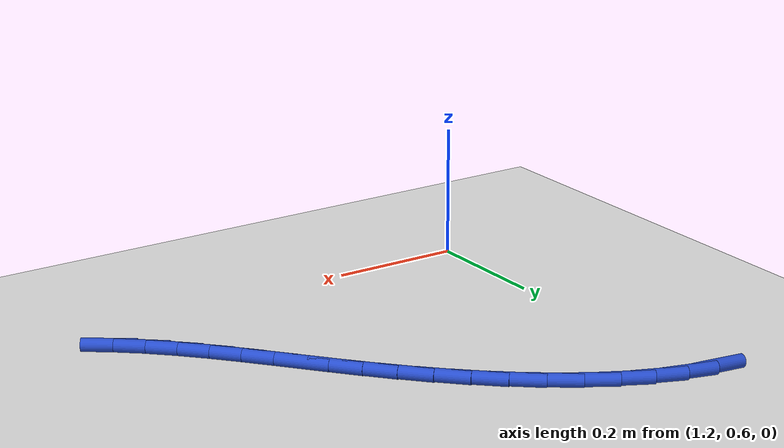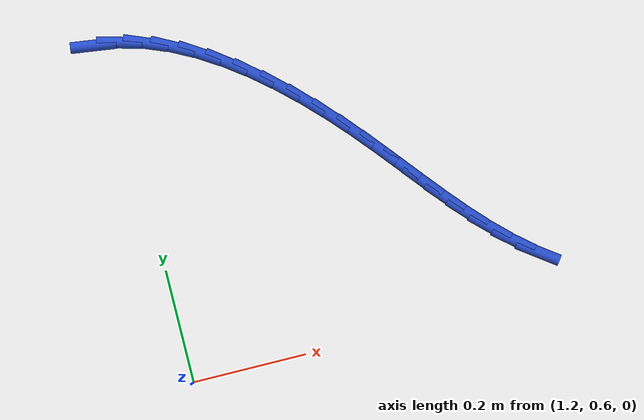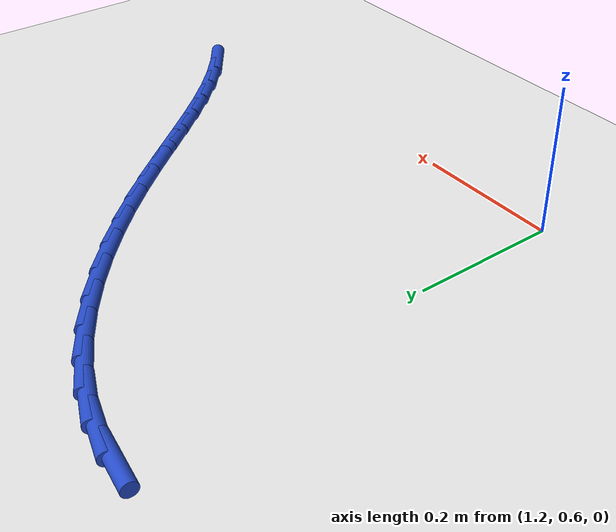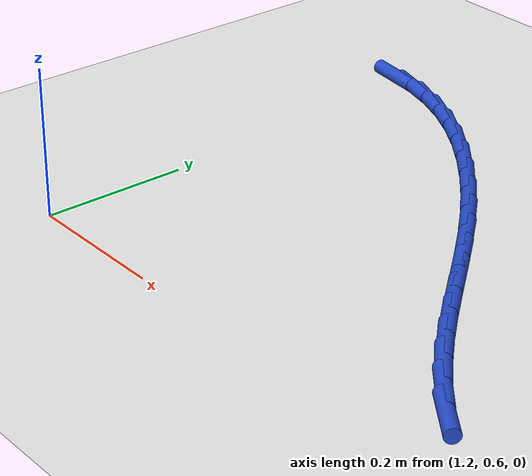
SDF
<sdf version="1.6">
 <world name="default">
  <model name="ground_plane">
   <static>1</static>
   <link name="link">
    <collision name="collision">
     <geometry><plane><normal>0 0 1</normal><size>100 100</size></plane></geometry>
     <surface><friction><ode><mu>100</mu><mu2>50</mu2></ode></friction></surface>
    </collision>
    <visual name="visual">
     <cast_shadows>0</cast_shadows>
     <geometry><plane><normal>0 0 1</normal><size>100 100</size></plane></geometry>
     <material>
      <script><uri>file://media/materials/scripts/gazebo.material</uri><name>Gazebo/WhiteGlow</name></script>
     </material>
    </visual>
   </link>
  </model>
  <model name="line">
   <link name="link_38">
    <pose>1.1732365240993912 1.2106333657813904 0.01 0 1.57 -0.1320077367489948</pose>
    <collision name="collision">
     <geometry><cylinder><radius>0.01</radius><length>0.08</length></cylinder></geometry>
    </collision>
    <visual name="visual">
     <material>
      <script><name>Gazebo/Blue</name><uri>file://media/materials/scripts/gazebo.material</uri></script>
     </material>
     <geometry><cylinder><radius>0.01</radius><length>0.08</length></cylinder></geometry>
    </visual>
   </link>
   <link name="link_39">
    <pose>1.218137404719517 1.204671430876612 0.01 0 1.57 -0.26673175967133944</pose>
    <collision name="collision">
     <geometry><cylinder><radius>0.01</radius><length>0.08</length></cylinder></geometry>
    </collision>
    <visual name="visual">
     <material>
      <script><name>Gazebo/Blue</name><uri>file://media/materials/scripts/gazebo.material</uri></script>
     </material>
     <geometry><cylinder><radius>0.01</radius><length>0.08</length></cylinder></geometry>
    </visual>
   </link>
   <link name="link_40">
    <pose>1.262499408350668 1.1925498358219668 0.01 0 1.57 -0.3834303766878469</pose>
    <collision name="collision">
     <geometry><cylinder><radius>0.01</radius><length>0.08</length></cylinder></geometry>
    </collision>
    <visual name="visual">
     <material>
      <script><name>Gazebo/Blue</name><uri>file://media/materials/scripts/gazebo.material</uri></script>
     </material>
     <geometry><cylinder><radius>0.01</radius><length>0.08</length></cylinder></geometry>
    </visual>
   </link>
   <link name="link_41">
    <pose>1.3061516406656701 1.1749407077315244 0.01 0 1.57 -0.48288711895890274</pose>
    <collision name="collision">
     <geometry><cylinder><radius>0.01</radius><length>0.08</length></cylinder></geometry>
    </collision>
    <visual name="visual">
     <material>
      <script><name>Gazebo/Blue</name><uri>file://media/materials/scripts/gazebo.material</uri></script>
     </material>
     <geometry><cylinder><radius>0.01</radius><length>0.08</length></cylinder></geometry>
    </visual>
   </link>
   <link name="link_42">
    <pose>1.3489232073373485 1.1525161737193543 0.01 0 1.57 -0.567048485277732</pose>
    <collision name="collision">
     <geometry><cylinder><radius>0.01</radius><length>0.08</length></cylinder></geometry>
    </collision>
    <visual name="visual">
     <material>
      <script><name>Gazebo/Blue</name><uri>file://media/materials/scripts/gazebo.material</uri></script>
     </material>
     <geometry><cylinder><radius>0.01</radius><length>0.08</length></cylinder></geometry>
    </visual>
   </link>
   <link name="link_43">
    <pose>1.3906432140385299 1.1259483608995267 0.01 0 1.57 -0.638198653560492</pose>
    <collision name="collision">
     <geometry><cylinder><radius>0.01</radius><length>0.08</length></cylinder></geometry>
    </collision>
    <visual name="visual">
     <material>
      <script><name>Gazebo/Blue</name><uri>file://media/materials/scripts/gazebo.material</uri></script>
     </material>
     <geometry><cylinder><radius>0.01</radius><length>0.08</length></cylinder></geometry>
    </visual>
   </link>
   <link name="link_44">
    <pose>1.4311407664420395 1.0959093963861104 0.01 0 1.57 -0.6985167395385447</pose>
    <collision name="collision">
     <geometry><cylinder><radius>0.01</radius><length>0.08</length></cylinder></geometry>
    </collision>
    <visual name="visual">
     <material>
      <script><name>Gazebo/Blue</name><uri>file://media/materials/scripts/gazebo.material</uri></script>
     </material>
     <geometry><cylinder><radius>0.01</radius><length>0.08</length></cylinder></geometry>
    </visual>
   </link>
   <link name="link_45">
    <pose>1.4702449702207046 1.0630714072931753 0.01 0 1.57 -0.7498971939405806</pose>
    <collision name="collision">
     <geometry><cylinder><radius>0.01</radius><length>0.08</length></cylinder></geometry>
    </collision>
    <visual name="visual">
     <material>
      <script><name>Gazebo/Blue</name><uri>file://media/materials/scripts/gazebo.material</uri></script>
     </material>
     <geometry><cylinder><radius>0.01</radius><length>0.08</length></cylinder></geometry>
    </visual>
   </link>
   <link name="link_46">
    <pose>1.50778493104735 1.0281065207347913 0.01 0 1.57 -0.7939107689178965</pose>
    <collision name="collision">
     <geometry><cylinder><radius>0.01</radius><length>0.08</length></cylinder></geometry>
    </collision>
    <visual name="visual">
     <material>
      <script><name>Gazebo/Blue</name><uri>file://media/materials/scripts/gazebo.material</uri></script>
     </material>
     <geometry><cylinder><radius>0.01</radius><length>0.08</length></cylinder></geometry>
    </visual>
   </link>
   <link name="link_47">
    <pose>1.5435897545948023 0.9916868638250278 0.01 0 1.57 -0.8317364242147484</pose>
    <collision name="collision">
     <geometry><cylinder><radius>0.01</radius><length>0.08</length></cylinder></geometry>
    </collision>
    <visual name="visual">
     <material>
      <script><name>Gazebo/Blue</name><uri>file://media/materials/scripts/gazebo.material</uri></script>
     </material>
     <geometry><cylinder><radius>0.01</radius><length>0.08</length></cylinder></geometry>
    </visual>
   </link>
   <link name="link_48">
    <pose>1.5774992788975772 0.9544795481267682 0.01 0 1.57 -0.8612995934906535</pose>
    <collision name="collision">
     <geometry><cylinder><radius>0.01</radius><length>0.08</length></cylinder></geometry>
    </collision>
    <visual name="visual">
     <material>
      <script><name>Gazebo/Blue</name><uri>file://media/materials/scripts/gazebo.material</uri></script>
     </material>
     <geometry><cylinder><radius>0.01</radius><length>0.08</length></cylinder></geometry>
    </visual>
   </link>
   <link name="link_49">
    <pose>1.6096834674717633 0.9169974077662258 0.01 0 1.57 -0.8787972510236451</pose>
    <collision name="collision">
     <geometry><cylinder><radius>0.01</radius><length>0.08</length></cylinder></geometry>
    </collision>
    <visual name="visual">
     <material>
      <script><name>Gazebo/Blue</name><uri>file://media/materials/scripts/gazebo.material</uri></script>
     </material>
     <geometry><cylinder><radius>0.01</radius><length>0.08</length></cylinder></geometry>
    </visual>
   </link>
   <link name="link_50">
    <pose>1.640696612459307 0.8795736686947088 0.01 0 1.57 -0.8832782447908238</pose>
    <collision name="collision">
     <geometry><cylinder><radius>0.01</radius><length>0.08</length></cylinder></geometry>
    </collision>
    <visual name="visual">
     <material>
      <script><name>Gazebo/Blue</name><uri>file://media/materials/scripts/gazebo.material</uri></script>
     </material>
     <geometry><cylinder><radius>0.01</radius><length>0.08</length></cylinder></geometry>
    </visual>
   </link>
   <link name="link_51">
    <pose>1.6711146575934945 0.8425314384322062 0.01 0 1.57 -0.8741520365505587</pose>
    <collision name="collision">
     <geometry><cylinder><radius>0.01</radius><length>0.08</length></cylinder></geometry>
    </collision>
    <visual name="visual">
     <material>
      <script><name>Gazebo/Blue</name><uri>file://media/materials/scripts/gazebo.material</uri></script>
     </material>
     <geometry><cylinder><radius>0.01</radius><length>0.08</length></cylinder></geometry>
    </visual>
   </link>
   <link name="link_52">
    <pose>1.7015135466076117 0.8061938244987067 0.01 0 1.57 -0.8510123768698182</pose>
    <collision name="collision">
     <geometry><cylinder><radius>0.01</radius><length>0.08</length></cylinder></geometry>
    </collision>
    <visual name="visual">
     <material>
      <script><name>Gazebo/Blue</name><uri>file://media/materials/scripts/gazebo.material</uri></script>
     </material>
     <geometry><cylinder><radius>0.01</radius><length>0.08</length></cylinder></geometry>
    </visual>
   </link>
   <link name="link_53">
    <pose>1.7324692232349455 0.7708839344141994 0.01 0 1.57 -0.8137134171846704</pose>
    <collision name="collision">
     <geometry><cylinder><radius>0.01</radius><length>0.08</length></cylinder></geometry>
    </collision>
    <visual name="visual">
     <material>
      <script><name>Gazebo/Blue</name><uri>file://media/materials/scripts/gazebo.material</uri></script>
     </material>
     <geometry><cylinder><radius>0.01</radius><length>0.08</length></cylinder></geometry>
    </visual>
   </link>
   <link name="link_54">
    <pose>1.7645576312087823 0.7369248756986729 0.01 0 1.57 -0.7625221179810815</pose>
    <collision name="collision">
     <geometry><cylinder><radius>0.01</radius><length>0.08</length></cylinder></geometry>
    </collision>
    <visual name="visual">
     <material>
      <script><name>Gazebo/Blue</name><uri>file://media/materials/scripts/gazebo.material</uri></script>
     </material>
     <geometry><cylinder><radius>0.01</radius><length>0.08</length></cylinder></geometry>
    </visual>
   </link>
   <link name="link_55">
    <pose>1.7983547142624072 0.7046397558721166 0.01 0 1.57 -0.6983257070535217</pose>
    <collision name="collision">
     <geometry><cylinder><radius>0.01</radius><length>0.08</length></cylinder></geometry>
    </collision>
    <visual name="visual">
     <material>
      <script><name>Gazebo/Blue</name><uri>file://media/materials/scripts/gazebo.material</uri></script>
     </material>
     <geometry><cylinder><radius>0.01</radius><length>0.08</length></cylinder></geometry>
    </visual>
   </link>
   <link name="link_56">
    <pose>1.8344364161291082 0.6743516824545194 0.01 0 1.57 -0.6270810724023469</pose>
    <collision name="collision">
     <geometry><cylinder><radius>0.01</radius><length>0.08</length></cylinder></geometry>
    </collision>
    <visual name="visual">
     <material>
      <script><name>Gazebo/Blue</name><uri>file://media/materials/scripts/gazebo.material</uri></script>
     </material>
     <geometry><cylinder><radius>0.01</radius><length>0.08</length></cylinder></geometry>
    </visual>
   </link>
  </model>
 </world>
</sdf>
